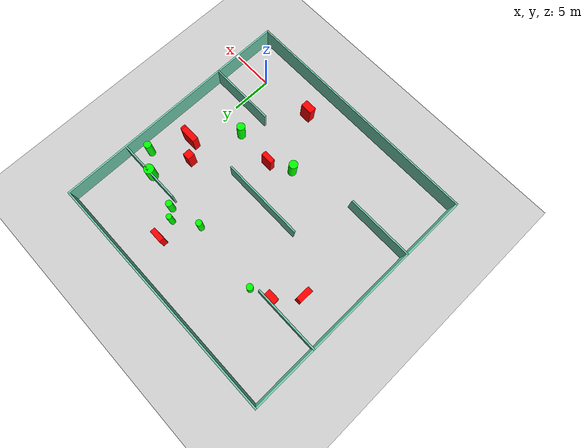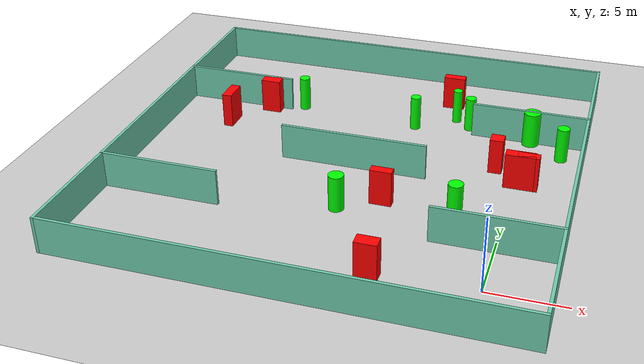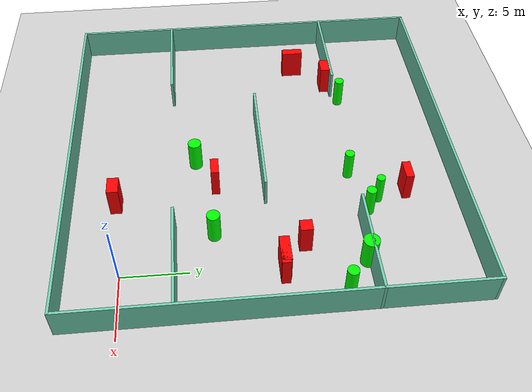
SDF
<sdf version="1.7">
 <world name="default">
  <light name="sun" type="directional">
   <pose>0 0 10 0 -0 0</pose>
   <diffuse>0.8 0.8 0.8 1</diffuse>
   <specular>0.2 0.2 0.2 1</specular>
   <attenuation>
    <range>1000</range>
    <constant>0.9</constant>
    <linear>0.01</linear>
    <quadratic>0.001</quadratic>
   </attenuation>
   <direction>-0.5 0.1 -0.9</direction>
   <spot><inner_angle>0</inner_angle><outer_angle>0</outer_angle><falloff>0</falloff></spot>
  </light>
  <model name="ground_plane">
   <static>1</static>
   <link name="link">
    <collision name="collision">
     <geometry><plane><normal>0 0 1</normal><size>100 100</size></plane></geometry>
     <surface>
      <contact><collide_bitmask>65535</collide_bitmask></contact>
      <friction><ode><mu>100</mu><mu2>50</mu2></ode></friction>
     </surface>
    </collision>
    <visual name="visual">
     <cast_shadows>0</cast_shadows>
     <geometry><plane><normal>0 0 1</normal><size>100 100</size></plane></geometry>
     <material>
      <script><uri>file://media/materials/scripts/gazebo.material</uri><name>Gazebo/Grey</name></script>
     </material>
    </visual>
   </link>
  </model>
  <gravity>0 0 -9.8</gravity>
  <magnetic_field>6e-06 2.3e-05 -4.2e-05</magnetic_field>
  <atmosphere type="adiabatic"/>
  <physics type="ode">
   <max_step_size>0.001</max_step_size>
   <real_time_factor>1</real_time_factor>
   <real_time_update_rate>1000</real_time_update_rate>
  </physics>
  <scene><ambient>0.4 0.4 0.4 1</ambient><background>0.7 0.7 0.7 1</background><shadows>1</shadows></scene>
  <spherical_coordinates>
   <surface_model>EARTH_WGS84</surface_model>
   <latitude_deg>0</latitude_deg>
   <longitude_deg>0</longitude_deg>
   <elevation>0</elevation>
   <heading_deg>0</heading_deg>
  </spherical_coordinates>
  <model name="my_base_walls">
   <link name="Wall_10">
    <collision name="Wall_10_Collision">
     <geometry><box><size>8.2 0.2 2.5</size></box></geometry>
     <pose>0 0 1.25 0 -0 0</pose>
    </collision>
    <visual name="Wall_10_Visual">
     <pose>0 0 1.25 0 -0 0</pose>
     <geometry><box><size>8.2 0.2 2.5</size></box></geometry>
     <material>
      <script><uri>file://media/materials/scripts/gazebo.material</uri><name>Gazebo/Grey</name></script>
      <ambient>0.435294 0.796078 0.67451 1</ambient>
     </material>
     <meta><layer>0</layer></meta>
    </visual>
    <pose>-11 -7 0 0 -0 0</pose>
   </link>
   <link name="Wall_12">
    <collision name="Wall_12_Collision">
     <geometry><box><size>8.2 0.2 2.5</size></box></geometry>
     <pose>0 0 1.25 0 -0 0</pose>
    </collision>
    <visual name="Wall_12_Visual">
     <pose>0 0 1.25 0 -0 0</pose>
     <geometry><box><size>8.2 0.2 2.5</size></box></geometry>
     <material>
      <script><uri>file://media/materials/scripts/gazebo.material</uri><name>Gazebo/Grey</name></script>
      <ambient>0.435294 0.796078 0.67451 1</ambient>
     </material>
     <meta><layer>0</layer></meta>
    </visual>
    <pose>-11 7 0 0 -0 0</pose>
   </link>
   <link name="Wall_14">
    <collision name="Wall_14_Collision">
     <geometry><box><size>8.2 0.2 2.5</size></box></geometry>
     <pose>0 0 1.25 0 -0 0</pose>
    </collision>
    <visual name="Wall_14_Visual">
     <pose>0 0 1.25 0 -0 0</pose>
     <geometry><box><size>8.2 0.2 2.5</size></box></geometry>
     <material>
      <script><uri>file://media/materials/scripts/gazebo.material</uri><name>Gazebo/Grey</name></script>
      <ambient>0.435294 0.796078 0.67451 1</ambient>
     </material>
     <meta><layer>0</layer></meta>
    </visual>
    <pose>11 7 0 0 -0 3.14159</pose>
   </link>
   <link name="Wall_16">
    <collision name="Wall_16_Collision">
     <geometry><box><size>10.2 0.2 2.5</size></box></geometry>
     <pose>0 0 1.25 0 -0 0</pose>
    </collision>
    <visual name="Wall_16_Visual">
     <pose>0 0 1.25 0 -0 0</pose>
     <geometry><box><size>10.2 0.2 2.5</size></box></geometry>
     <material>
      <script><uri>file://media/materials/scripts/gazebo.material</uri><name>Gazebo/Grey</name></script>
      <ambient>0.435294 0.796078 0.67451 1</ambient>
     </material>
     <meta><layer>0</layer></meta>
    </visual>
    <pose>0 0 0 0 -0 3.14159</pose>
   </link>
   <link name="Wall_2">
    <collision name="Wall_2_Collision">
     <geometry><box><size>30.2 0.2 2.5</size></box></geometry>
     <pose>0 0 1.25 0 -0 0</pose>
    </collision>
    <visual name="Wall_2_Visual">
     <pose>0 0 1.25 0 -0 0</pose>
     <geometry><box><size>30.2 0.2 2.5</size></box></geometry>
     <material>
      <script><uri>file://media/materials/scripts/gazebo.material</uri><name>Gazebo/Grey</name></script>
      <ambient>0.435294 0.796078 0.67451 1</ambient>
     </material>
     <meta><layer>0</layer></meta>
    </visual>
    <pose>0 -15 0 0 -0 3.14159</pose>
   </link>
   <link name="Wall_3">
    <collision name="Wall_3_Collision">
     <geometry><box><size>30.2 0.2 2.5</size></box></geometry>
     <pose>0 0 1.25 0 -0 0</pose>
    </collision>
    <visual name="Wall_3_Visual">
     <pose>0 0 1.25 0 -0 0</pose>
     <geometry><box><size>30.2 0.2 2.5</size></box></geometry>
     <material>
      <script><uri>file://media/materials/scripts/gazebo.material</uri><name>Gazebo/Grey</name></script>
      <ambient>0.435294 0.796078 0.67451 1</ambient>
     </material>
     <meta><layer>0</layer></meta>
    </visual>
    <pose>-15 0 0 0 -0 1.5708</pose>
   </link>
   <link name="Wall_4">
    <collision name="Wall_4_Collision">
     <geometry><box><size>30.2 0.2 2.5</size></box></geometry>
     <pose>0 0 1.25 0 -0 0</pose>
    </collision>
    <visual name="Wall_4_Visual">
     <pose>0 0 1.25 0 -0 0</pose>
     <geometry><box><size>30.2 0.2 2.5</size></box></geometry>
     <material>
      <script><uri>file://media/materials/scripts/gazebo.material</uri><name>Gazebo/Grey</name></script>
      <ambient>0.435294 0.796078 0.67451 1</ambient>
     </material>
     <meta><layer>0</layer></meta>
    </visual>
    <pose>0 15 0 0 -0 0</pose>
   </link>
   <link name="Wall_6">
    <collision name="Wall_6_Collision">
     <geometry><box><size>30.2 0.2 2.5</size></box></geometry>
     <pose>0 0 1.25 0 -0 0</pose>
    </collision>
    <visual name="Wall_6_Visual">
     <pose>0 0 1.25 0 -0 0</pose>
     <geometry><box><size>30.2 0.2 2.5</size></box></geometry>
     <material>
      <script><uri>file://media/materials/scripts/gazebo.material</uri><name>Gazebo/Grey</name></script>
      <ambient>0.435294 0.796078 0.67451 1</ambient>
     </material>
     <meta><layer>0</layer></meta>
    </visual>
    <pose>15 0 0 0 -0 1.5708</pose>
   </link>
   <link name="Wall_8">
    <collision name="Wall_8_Collision">
     <geometry><box><size>8.2 0.2 2.5</size></box></geometry>
     <pose>0 0 1.25 0 -0 0</pose>
    </collision>
    <visual name="Wall_8_Visual">
     <pose>0 0 1.25 0 -0 0</pose>
     <geometry><box><size>8.2 0.2 2.5</size></box></geometry>
     <material>
      <script><uri>file://media/materials/scripts/gazebo.material</uri><name>Gazebo/Grey</name></script>
      <ambient>0.435294 0.796078 0.67451 1</ambient>
     </material>
     <meta><layer>0</layer></meta>
    </visual>
    <pose>11 -7 0 0 -0 3.14159</pose>
   </link>
   <static>1</static>
   <pose>-11 11 0 0 -0 0</pose>
  </model>
  <model name="cylinder1">
   <static>1</static>
   <link name="link">
    <inertial>
     <mass>1</mass>
     <inertia><ixx>0.5</ixx><ixy>0</ixy><ixz>0</ixz><iyy>0.5</iyy><iyz>0</iyz><izz>1</izz></inertia>
    </inertial>
    <collision name="collision">
     <geometry><cylinder><radius>0.3684686068937845</radius><length>2.5</length></cylinder></geometry>
    </collision>
    <visual name="visual">
     <geometry><cylinder><radius>0.3684686068937845</radius><length>2.5</length></cylinder></geometry>
     <material>
      <ambient>0 1 0 1</ambient>
      <diffuse>0 1 0 1</diffuse>
      <specular>0.1 0.1 0.1 1</specular>
      <emissive>0 0 0 0</emissive>
     </material>
    </visual>
   </link>
   <pose>-8.295776525154253 17.840920946314117 1.25 0 0 0</pose>
  </model>
  <model name="cylinder2">
   <static>1</static>
   <link name="link">
    <inertial>
     <mass>1</mass>
     <inertia><ixx>0.5</ixx><ixy>0</ixy><ixz>0</ixz><iyy>0.5</iyy><iyz>0</iyz><izz>1</izz></inertia>
    </inertial>
    <collision name="collision">
     <geometry><cylinder><radius>0.38181139423618204</radius><length>2.5</length></cylinder></geometry>
    </collision>
    <visual name="visual">
     <geometry><cylinder><radius>0.38181139423618204</radius><length>2.5</length></cylinder></geometry>
     <material>
      <ambient>0 1 0 1</ambient>
      <diffuse>0 1 0 1</diffuse>
      <specular>0.1 0.1 0.1 1</specular>
      <emissive>0 0 0 0</emissive>
     </material>
    </visual>
   </link>
   <pose>-4.4199699765068985 18.79293222327229 1.25 0 0 0</pose>
  </model>
  <model name="cylinder3">
   <static>1</static>
   <link name="link">
    <inertial>
     <mass>1</mass>
     <inertia><ixx>0.5</ixx><ixy>0</ixy><ixz>0</ixz><iyy>0.5</iyy><iyz>0</iyz><izz>1</izz></inertia>
    </inertial>
    <collision name="collision">
     <geometry><cylinder><radius>0.5926603935869972</radius><length>2.5</length></cylinder></geometry>
    </collision>
    <visual name="visual">
     <geometry><cylinder><radius>0.5926603935869972</radius><length>2.5</length></cylinder></geometry>
     <material>
      <ambient>0 1 0 1</ambient>
      <diffuse>0 1 0 1</diffuse>
      <specular>0.1 0.1 0.1 1</specular>
      <emissive>0 0 0 0</emissive>
     </material>
    </visual>
   </link>
   <pose>0.15136354904867844 17.843966308441146 1.25 0 0 0</pose>
  </model>
  <model name="cylinder4">
   <static>1</static>
   <link name="link">
    <inertial>
     <mass>1</mass>
     <inertia><ixx>0.5</ixx><ixy>0</ixy><ixz>0</ixz><iyy>0.5</iyy><iyz>0</iyz><izz>1</izz></inertia>
    </inertial>
    <collision name="collision">
     <geometry><cylinder><radius>0.4275178025255072</radius><length>2.5</length></cylinder></geometry>
    </collision>
    <visual name="visual">
     <geometry><cylinder><radius>0.4275178025255072</radius><length>2.5</length></cylinder></geometry>
     <material>
      <ambient>0 1 0 1</ambient>
      <diffuse>0 1 0 1</diffuse>
      <specular>0.1 0.1 0.1 1</specular>
      <emissive>0 0 0 0</emissive>
     </material>
    </visual>
   </link>
   <pose>2.5032819611838413 16.113077311378 1.25 0 0 0</pose>
  </model>
  <model name="cylinder5">
   <static>1</static>
   <link name="link">
    <inertial>
     <mass>1</mass>
     <inertia><ixx>0.5</ixx><ixy>0</ixy><ixz>0</ixz><iyy>0.5</iyy><iyz>0</iyz><izz>1</izz></inertia>
    </inertial>
    <collision name="collision">
     <geometry><cylinder><radius>0.38360184052289015</radius><length>2.5</length></cylinder></geometry>
    </collision>
    <visual name="visual">
     <geometry><cylinder><radius>0.38360184052289015</radius><length>2.5</length></cylinder></geometry>
     <material>
      <ambient>0 1 0 1</ambient>
      <diffuse>0 1 0 1</diffuse>
      <specular>0.1 0.1 0.1 1</specular>
      <emissive>0 0 0 0</emissive>
     </material>
    </visual>
   </link>
   <pose>-17.064758058861422 18.49007941310264 1.25 0 0 0</pose>
  </model>
  <model name="cylinder6">
   <static>1</static>
   <link name="link">
    <inertial>
     <mass>1</mass>
     <inertia><ixx>0.5</ixx><ixy>0</ixy><ixz>0</ixz><iyy>0.5</iyy><iyz>0</iyz><izz>1</izz></inertia>
    </inertial>
    <collision name="collision">
     <geometry><cylinder><radius>0.49510491171106774</radius><length>2.5</length></cylinder></geometry>
    </collision>
    <visual name="visual">
     <geometry><cylinder><radius>0.49510491171106774</radius><length>2.5</length></cylinder></geometry>
     <material>
      <ambient>0 1 0 1</ambient>
      <diffuse>0 1 0 1</diffuse>
      <specular>0.1 0.1 0.1 1</specular>
      <emissive>0 0 0 0</emissive>
     </material>
    </visual>
   </link>
   <pose>-3.0719306401434423 6.919628762369477 1.25 0 0 0</pose>
  </model>
  <model name="cylinder7">
   <static>1</static>
   <link name="link">
    <inertial>
     <mass>1</mass>
     <inertia><ixx>0.5</ixx><ixy>0</ixy><ixz>0</ixz><iyy>0.5</iyy><iyz>0</iyz><izz>1</izz></inertia>
    </inertial>
    <collision name="collision">
     <geometry><cylinder><radius>0.5163467248183986</radius><length>2.5</length></cylinder></geometry>
    </collision>
    <visual name="visual">
     <geometry><cylinder><radius>0.5163467248183986</radius><length>2.5</length></cylinder></geometry>
     <material>
      <ambient>0 1 0 1</ambient>
      <diffuse>0 1 0 1</diffuse>
      <specular>0.1 0.1 0.1 1</specular>
      <emissive>0 0 0 0</emissive>
     </material>
    </visual>
   </link>
   <pose>-10.49633070093833 5.758199624701943 1.25 0 0 0</pose>
  </model>
  <model name="cylinder8">
   <static>1</static>
   <link name="link">
    <inertial>
     <mass>1</mass>
     <inertia><ixx>0.5</ixx><ixy>0</ixy><ixz>0</ixz><iyy>0.5</iyy><iyz>0</iyz><izz>1</izz></inertia>
    </inertial>
    <collision name="collision">
     <geometry><cylinder><radius>0.3258133373855156</radius><length>2.5</length></cylinder></geometry>
    </collision>
    <visual name="visual">
     <geometry><cylinder><radius>0.3258133373855156</radius><length>2.5</length></cylinder></geometry>
     <material>
      <ambient>0 1 0 1</ambient>
      <diffuse>0 1 0 1</diffuse>
      <specular>0.1 0.1 0.1 1</specular>
      <emissive>0 0 0 0</emissive>
     </material>
    </visual>
   </link>
   <pose>-5.561123702466304 19.73751935121445 1.25 0 0 0</pose>
  </model>
  <model name="box1">
   <static>1</static>
   <link name="link">
    <inertial>
     <mass>1</mass>
     <inertia><ixx>0.083</ixx><ixy>0</ixy><ixz>0</ixz><iyy>0.083</iyy><iyz>0</iyz><izz>0.083</izz></inertia>
    </inertial>
    <collision name="collision">
     <geometry><box><size>2.0130798596068313 0.7479563540785615 2.5</size></box></geometry>
    </collision>
    <visual name="visual">
     <geometry><box><size>2.0130798596068313 0.7479563540785615 2.5</size></box></geometry>
     <material>
      <ambient>1 0 0 1</ambient>
      <diffuse>1 0 0 1</diffuse>
      <specular>0.1 0.1 0.1 1</specular>
      <emissive>0 0 0 0</emissive>
     </material>
    </visual>
    <sensor name="my_contact" type="contact">
     <contact><collision>box_collision</collision><topic>__default_topic__</topic></contact>
    </sensor>
   </link>
   <pose>0.2437862577443326 11.779735837251122 1.25 0 0 0</pose>
  </model>
  <model name="box2">
   <static>1</static>
   <link name="link">
    <inertial>
     <mass>1</mass>
     <inertia><ixx>0.083</ixx><ixy>0</ixy><ixz>0</ixz><iyy>0.083</iyy><iyz>0</iyz><izz>0.083</izz></inertia>
    </inertial>
    <collision name="collision">
     <geometry><box><size>0.9168310674158247 0.9234716274193656 2.5</size></box></geometry>
    </collision>
    <visual name="visual">
     <geometry><box><size>0.9168310674158247 0.9234716274193656 2.5</size></box></geometry>
     <material>
      <ambient>1 0 0 1</ambient>
      <diffuse>1 0 0 1</diffuse>
      <specular>0.1 0.1 0.1 1</specular>
      <emissive>0 0 0 0</emissive>
     </material>
    </visual>
    <sensor name="my_contact" type="contact">
     <contact><collision>box_collision</collision><topic>__default_topic__</topic></contact>
    </sensor>
   </link>
   <pose>-1.5891128556108356 13.482715799807206 1.25 0 0 0</pose>
  </model>
  <model name="box3">
   <static>1</static>
   <link name="link">
    <inertial>
     <mass>1</mass>
     <inertia><ixx>0.083</ixx><ixy>0</ixy><ixz>0</ixz><iyy>0.083</iyy><iyz>0</iyz><izz>0.083</izz></inertia>
    </inertial>
    <collision name="collision">
     <geometry><box><size>1.4532369095957711 0.6546004460009457 2.5</size></box></geometry>
    </collision>
    <visual name="visual">
     <geometry><box><size>1.4532369095957711 0.6546004460009457 2.5</size></box></geometry>
     <material>
      <ambient>1 0 0 1</ambient>
      <diffuse>1 0 0 1</diffuse>
      <specular>0.1 0.1 0.1 1</specular>
      <emissive>0 0 0 0</emissive>
     </material>
    </visual>
    <sensor name="my_contact" type="contact">
     <contact><collision>box_collision</collision><topic>__default_topic__</topic></contact>
    </sensor>
   </link>
   <pose>0.7743351857188934 11.738865730109318 1.25 0 0 0</pose>
  </model>
  <model name="box4">
   <static>1</static>
   <link name="link">
    <inertial>
     <mass>1</mass>
     <inertia><ixx>0.083</ixx><ixy>0</ixy><ixz>0</ixz><iyy>0.083</iyy><iyz>0</iyz><izz>0.083</izz></inertia>
    </inertial>
    <collision name="collision">
     <geometry><box><size>1.43269582807592 0.8679166510613162 2.5</size></box></geometry>
    </collision>
    <visual name="visual">
     <geometry><box><size>1.43269582807592 0.8679166510613162 2.5</size></box></geometry>
     <material>
      <ambient>1 0 0 1</ambient>
      <diffuse>1 0 0 1</diffuse>
      <specular>0.1 0.1 0.1 1</specular>
      <emissive>0 0 0 0</emissive>
     </material>
    </visual>
    <sensor name="my_contact" type="contact">
     <contact><collision>box_collision</collision><topic>__default_topic__</topic></contact>
    </sensor>
   </link>
   <pose>-6.628842718609182 -0.4668506002119095 1.25 0 0 0</pose>
  </model>
  <model name="box5">
   <static>1</static>
   <link name="link">
    <inertial>
     <mass>1</mass>
     <inertia><ixx>0.083</ixx><ixy>0</ixy><ixz>0</ixz><iyy>0.083</iyy><iyz>0</iyz><izz>0.083</izz></inertia>
    </inertial>
    <collision name="collision">
     <geometry><box><size>1.463265059369058 0.6289630278402001 2.5</size></box></geometry>
    </collision>
    <visual name="visual">
     <geometry><box><size>1.463265059369058 0.6289630278402001 2.5</size></box></geometry>
     <material>
      <ambient>1 0 0 1</ambient>
      <diffuse>1 0 0 1</diffuse>
      <specular>0.1 0.1 0.1 1</specular>
      <emissive>0 0 0 0</emissive>
     </material>
    </visual>
    <sensor name="my_contact" type="contact">
     <contact><collision>box_collision</collision><topic>__default_topic__</topic></contact>
    </sensor>
   </link>
   <pose>-7.930090745294859 7.227012176438361 1.25 0 0 0</pose>
  </model>
  <model name="box6">
   <static>1</static>
   <link name="link">
    <inertial>
     <mass>1</mass>
     <inertia><ixx>0.083</ixx><ixy>0</ixy><ixz>0</ixz><iyy>0.083</iyy><iyz>0</iyz><izz>0.083</izz></inertia>
    </inertial>
    <collision name="collision">
     <geometry><box><size>0.6834591531033078 1.7465330127716943 2.5</size></box></geometry>
    </collision>
    <visual name="visual">
     <geometry><box><size>0.6834591531033078 1.7465330127716943 2.5</size></box></geometry>
     <material>
      <ambient>1 0 0 1</ambient>
      <diffuse>1 0 0 1</diffuse>
      <specular>0.1 0.1 0.1 1</specular>
      <emissive>0 0 0 0</emissive>
     </material>
    </visual>
    <sensor name="my_contact" type="contact">
     <contact><collision>box_collision</collision><topic>__default_topic__</topic></contact>
    </sensor>
   </link>
   <pose>-21.530405035252507 14.889190145504166 1.25 0 0 0</pose>
  </model>
  <model name="box7">
   <static>1</static>
   <link name="link">
    <inertial>
     <mass>1</mass>
     <inertia><ixx>0.083</ixx><ixy>0</ixy><ixz>0</ixz><iyy>0.083</iyy><iyz>0</iyz><izz>0.083</izz></inertia>
    </inertial>
    <collision name="collision">
     <geometry><box><size>1.410793308873707 0.8178862317438198 2.5</size></box></geometry>
    </collision>
    <visual name="visual">
     <geometry><box><size>1.410793308873707 0.8178862317438198 2.5</size></box></geometry>
     <material>
      <ambient>1 0 0 1</ambient>
      <diffuse>1 0 0 1</diffuse>
      <specular>0.1 0.1 0.1 1</specular>
      <emissive>0 0 0 0</emissive>
     </material>
    </visual>
    <sensor name="my_contact" type="contact">
     <contact><collision>box_collision</collision><topic>__default_topic__</topic></contact>
    </sensor>
   </link>
   <pose>-19.327433651064098 17.544979898723483 1.25 0 0 0</pose>
  </model>
  <model name="box8">
   <static>1</static>
   <link name="link">
    <inertial>
     <mass>1</mass>
     <inertia><ixx>0.083</ixx><ixy>0</ixy><ixz>0</ixz><iyy>0.083</iyy><iyz>0</iyz><izz>0.083</izz></inertia>
    </inertial>
    <collision name="collision">
     <geometry><box><size>1.5643131569223272 0.6308737284508986 2.5</size></box></geometry>
    </collision>
    <visual name="visual">
     <geometry><box><size>1.5643131569223272 0.6308737284508986 2.5</size></box></geometry>
     <material>
      <ambient>1 0 0 1</ambient>
      <diffuse>1 0 0 1</diffuse>
      <specular>0.1 0.1 0.1 1</specular>
      <emissive>0 0 0 0</emissive>
     </material>
    </visual>
    <sensor name="my_contact" type="contact">
     <contact><collision>box_collision</collision><topic>__default_topic__</topic></contact>
    </sensor>
   </link>
   <pose>-6.241238344780037 21.96358379629479 1.25 0 0 0</pose>
  </model>
 </world>
</sdf>
